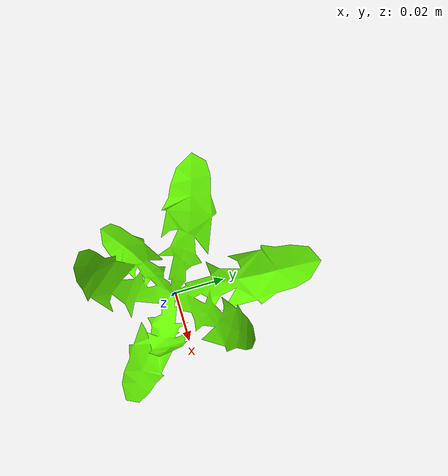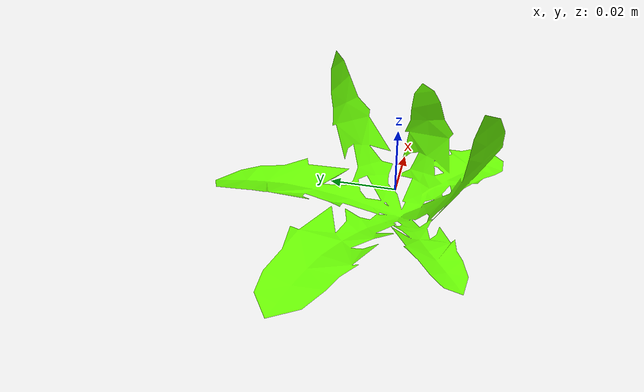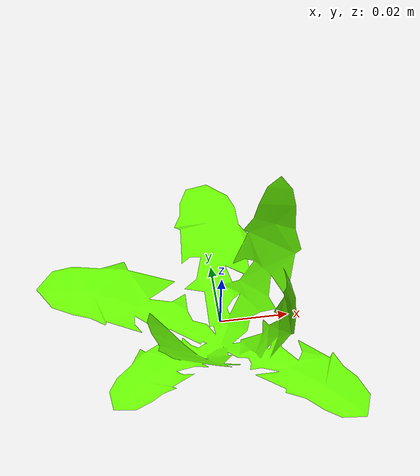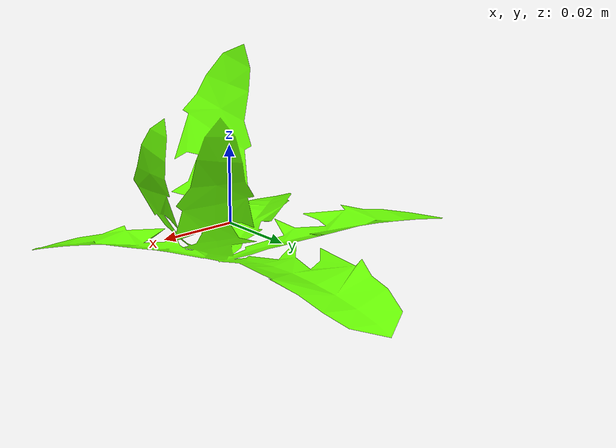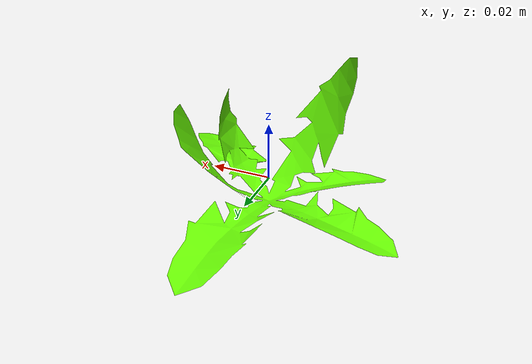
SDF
<?xml version='1.0'?>
<sdf version='1.6'>
  <model name='plant_small'>
    <link name='link_1'>
      <visual name='visual'>
        <pose frame=''>0 0 0 0 0 0</pose>
        <geometry>
          <mesh>
            <uri>model://plant_small/meshes/plant_small.dae</uri>
            <scale>1.0 1.0 1.0</scale>
          </mesh>
        </geometry>
        <cast_shadows>0</cast_shadows>
        <transparency>0</transparency>
      </visual>

    </link>

    <static>1</static>
    <allow_auto_disable>1</allow_auto_disable>
  </model>
</sdf>
